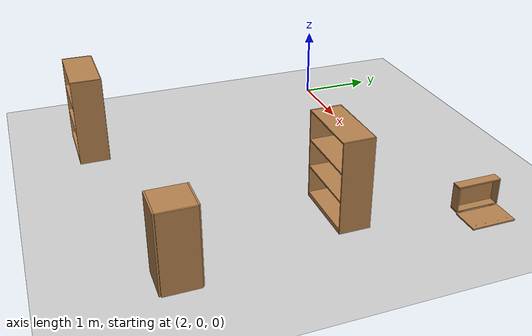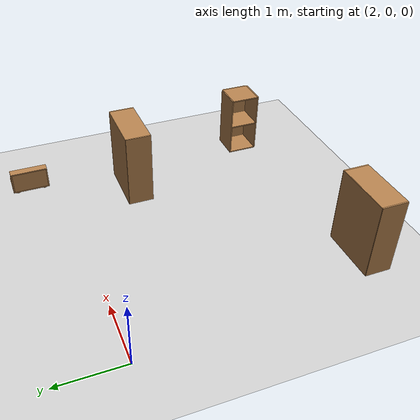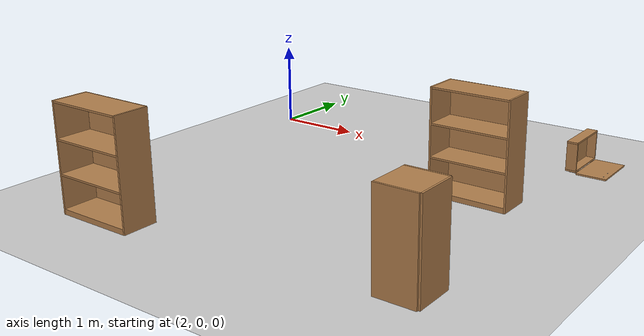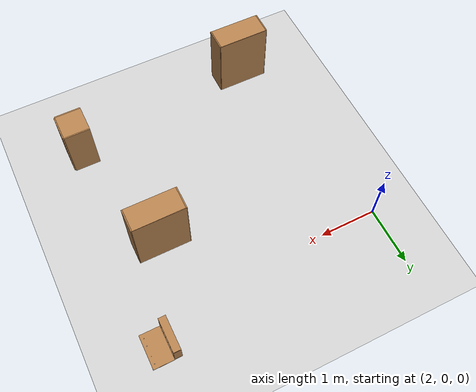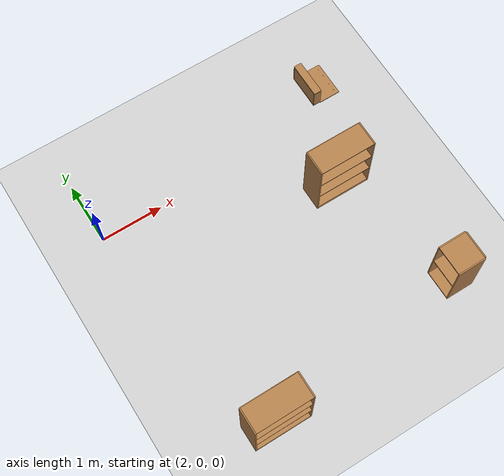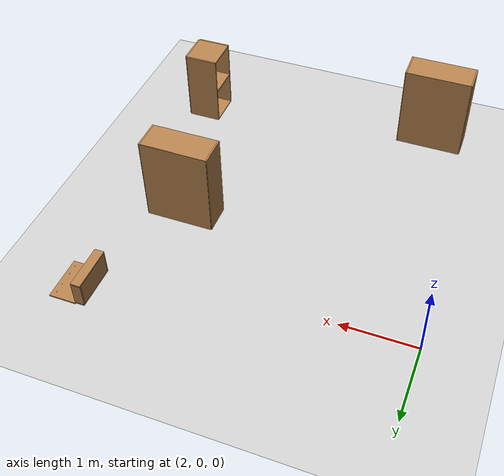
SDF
<sdf version="1.6">
 <world name="default">
  <model name="ground_plane">
   <static>1</static>
   <link name="link">
    <collision name="collision">
     <geometry><plane><normal>0 0 1</normal><size>100 100</size></plane></geometry>
     <surface><friction><ode><mu>100</mu><mu2>50</mu2></ode></friction></surface>
    </collision>
    <visual name="visual">
     <transparency>1</transparency>
     <cast_shadows>0</cast_shadows>
     <geometry><plane><normal>0 0 1</normal><size>100 100</size></plane></geometry>
     <material>
      <script><uri>file://media/materials/scripts/gazebo.material</uri><name>Gazebo/Grey</name></script>
     </material>
    </visual>
   </link>
  </model>
  <model name="cabinet">
   <static>1</static>
   <link name="cabinet_bottom_plate">
    <inertial>
     <pose>0 0 -1 0 -0 0</pose>
     <inertia><ixx>2.05</ixx><ixy>0</ixy><ixz>0</ixz><iyy>2.05</iyy><iyz>0</iyz><izz>2.05</izz></inertia>
     <mass>25</mass>
    </inertial>
    <collision name="cabinet_bottom_plate_geom">
     <pose>0 0 0.01 0 -0 0</pose>
     <geometry><box><size>0.45 0.45 0.02</size></box></geometry>
    </collision>
    <visual name="cabinet_bottom_plate_geom_visual">
     <pose>0 0 0.01 0 -0 0</pose>
     <geometry><box><size>0.45 0.45 0.02</size></box></geometry>
     <material>
      <script><uri>file://media/materials/scripts/gazebo.material</uri><name>Gazebo/Wood</name></script>
     </material>
    </visual>
    <collision name="cabinet_bottom_plate_geom_cabinet_back_plate">
     <pose>0.235 0 0.51 0 -0 0</pose>
     <geometry><box><size>0.02 0.45 1.02</size></box></geometry>
    </collision>
    <visual name="cabinet_bottom_plate_geom_cabinet_back_plate_visual">
     <pose>0.235 0 0.51 0 -0 0</pose>
     <geometry><box><size>0.02 0.45 1.02</size></box></geometry>
     <material>
      <script><uri>file://media/materials/scripts/gazebo.material</uri><name>Gazebo/Wood</name></script>
     </material>
    </visual>
    <collision name="cabinet_bottom_plate_geom_cabinet_left_plate">
     <pose>0 0.235 0.51 0 -0 0</pose>
     <geometry><box><size>0.45 0.02 1.02</size></box></geometry>
    </collision>
    <visual name="cabinet_bottom_plate_geom_cabinet_left_plate_visual">
     <pose>0 0.235 0.51 0 -0 0</pose>
     <geometry><box><size>0.45 0.02 1.02</size></box></geometry>
     <material>
      <script><uri>file://media/materials/scripts/gazebo.material</uri><name>Gazebo/Wood</name></script>
     </material>
    </visual>
    <collision name="cabinet_bottom_plate_geom_cabinet_middle_plate">
     <pose>0 0 0.51 0 -0 0</pose>
     <geometry><box><size>0.45 0.45 0.02</size></box></geometry>
    </collision>
    <visual name="cabinet_bottom_plate_geom_cabinet_middle_plate_visual">
     <pose>0 0 0.51 0 -0 0</pose>
     <geometry><box><size>0.45 0.45 0.02</size></box></geometry>
     <material>
      <script><uri>file://media/materials/scripts/gazebo.material</uri><name>Gazebo/Wood</name></script>
     </material>
    </visual>
    <collision name="cabinet_bottom_plate_geom_cabinet_right_plate">
     <pose>0 -0.235 0.51 0 -0 0</pose>
     <geometry><box><size>0.45 0.02 1.02</size></box></geometry>
    </collision>
    <visual name="cabinet_bottom_plate_geom_cabinet_right_plate_visual">
     <pose>0 -0.235 0.51 0 -0 0</pose>
     <geometry><box><size>0.45 0.02 1.02</size></box></geometry>
     <material>
      <script><uri>file://media/materials/scripts/gazebo.material</uri><name>Gazebo/Wood</name></script>
     </material>
    </visual>
    <collision name="cabinet_bottom_plate_geom_cabinet_top_plate">
     <pose>0 0 1.01 0 -0 0</pose>
     <geometry><box><size>0.45 0.45 0.02</size></box></geometry>
    </collision>
    <visual name="cabinet_bottom_plate_geom_cabinet_top_plate_visual">
     <pose>0 0 1.01 0 -0 0</pose>
     <geometry><box><size>0.45 0.45 0.02</size></box></geometry>
     <material>
      <script><uri>file://media/materials/scripts/gazebo.material</uri><name>Gazebo/Wood</name></script>
     </material>
    </visual>
   </link>
   <pose>6.02694 -3.24856 0 0 -0 0</pose>
  </model>
  <model name="bookshelf">
   <static>1</static>
   <link name="link">
    <inertial><mass>1</mass></inertial>
    <collision name="back">
     <pose>0 0.005 0.6 0 -0 0</pose>
     <geometry><box><size>0.9 0.01 1.2</size></box></geometry>
    </collision>
    <visual name="visual1">
     <pose>0 0.005 0.6 0 -0 0</pose>
     <geometry><box><size>0.9 0.01 1.2</size></box></geometry>
     <material>
      <script><uri>file://media/materials/scripts/gazebo.material</uri><name>Gazebo/Wood</name></script>
     </material>
    </visual>
    <collision name="left_side">
     <pose>0.45 -0.195 0.6 0 -0 0</pose>
     <geometry><box><size>0.02 0.4 1.2</size></box></geometry>
    </collision>
    <visual name="visual2">
     <pose>0.45 -0.195 0.6 0 -0 0</pose>
     <geometry><box><size>0.02 0.4 1.2</size></box></geometry>
     <material>
      <script><uri>file://media/materials/scripts/gazebo.material</uri><name>Gazebo/Wood</name></script>
     </material>
    </visual>
    <collision name="right_side">
     <pose>-0.45 -0.195 0.6 0 -0 0</pose>
     <geometry><box><size>0.02 0.4 1.2</size></box></geometry>
    </collision>
    <visual name="visual3">
     <pose>-0.45 -0.195 0.6 0 -0 0</pose>
     <geometry><box><size>0.02 0.4 1.2</size></box></geometry>
     <material>
      <script><uri>file://media/materials/scripts/gazebo.material</uri><name>Gazebo/Wood</name></script>
     </material>
    </visual>
    <collision name="bottom">
     <pose>0 -0.195 0.03 0 -0 0</pose>
     <geometry><box><size>0.88 0.4 0.06</size></box></geometry>
    </collision>
    <visual name="visual4">
     <pose>0 -0.195 0.03 0 -0 0</pose>
     <geometry><box><size>0.88 0.4 0.06</size></box></geometry>
     <material>
      <script><uri>file://media/materials/scripts/gazebo.material</uri><name>Gazebo/Wood</name></script>
     </material>
    </visual>
    <collision name="top">
     <pose>0 -0.195 1.19 0 -0 0</pose>
     <geometry><box><size>0.88 0.4 0.02</size></box></geometry>
    </collision>
    <visual name="visual5">
     <pose>0 -0.195 1.19 0 -0 0</pose>
     <geometry><box><size>0.88 0.4 0.02</size></box></geometry>
     <material>
      <script><uri>file://media/materials/scripts/gazebo.material</uri><name>Gazebo/Wood</name></script>
     </material>
    </visual>
    <collision name="low_shelf">
     <pose>0 -0.195 0.43 0 -0 0</pose>
     <geometry><box><size>0.88 0.4 0.02</size></box></geometry>
    </collision>
    <visual name="visual6">
     <pose>0 -0.195 0.43 0 -0 0</pose>
     <geometry><box><size>0.88 0.4 0.02</size></box></geometry>
     <material>
      <script><uri>file://media/materials/scripts/gazebo.material</uri><name>Gazebo/Wood</name></script>
     </material>
    </visual>
    <collision name="high_shelf">
     <pose>0 -0.195 0.8 0 -0 0</pose>
     <geometry><box><size>0.88 0.4 0.02</size></box></geometry>
    </collision>
    <visual name="visual7">
     <pose>0 -0.195 0.8 0 -0 0</pose>
     <geometry><box><size>0.88 0.4 0.02</size></box></geometry>
     <material>
      <script><uri>file://media/materials/scripts/gazebo.material</uri><name>Gazebo/Wood</name></script>
     </material>
    </visual>
   </link>
   <pose>5.44874 -0.888816 0 0 -0 0</pose>
  </model>
  <model name="bookshelf_1">
   <static>1</static>
   <link name="link">
    <inertial><mass>1</mass></inertial>
    <collision name="back">
     <pose>0 0.005 0.6 0 -0 0</pose>
     <geometry><box><size>0.9 0.01 1.2</size></box></geometry>
    </collision>
    <visual name="visual1">
     <pose>0 0.005 0.6 0 -0 0</pose>
     <geometry><box><size>0.9 0.01 1.2</size></box></geometry>
     <material>
      <script><uri>file://media/materials/scripts/gazebo.material</uri><name>Gazebo/Wood</name></script>
     </material>
    </visual>
    <collision name="left_side">
     <pose>0.45 -0.195 0.6 0 -0 0</pose>
     <geometry><box><size>0.02 0.4 1.2</size></box></geometry>
    </collision>
    <visual name="visual2">
     <pose>0.45 -0.195 0.6 0 -0 0</pose>
     <geometry><box><size>0.02 0.4 1.2</size></box></geometry>
     <material>
      <script><uri>file://media/materials/scripts/gazebo.material</uri><name>Gazebo/Wood</name></script>
     </material>
    </visual>
    <collision name="right_side">
     <pose>-0.45 -0.195 0.6 0 -0 0</pose>
     <geometry><box><size>0.02 0.4 1.2</size></box></geometry>
    </collision>
    <visual name="visual3">
     <pose>-0.45 -0.195 0.6 0 -0 0</pose>
     <geometry><box><size>0.02 0.4 1.2</size></box></geometry>
     <material>
      <script><uri>file://media/materials/scripts/gazebo.material</uri><name>Gazebo/Wood</name></script>
     </material>
    </visual>
    <collision name="bottom">
     <pose>0 -0.195 0.03 0 -0 0</pose>
     <geometry><box><size>0.88 0.4 0.06</size></box></geometry>
    </collision>
    <visual name="visual4">
     <pose>0 -0.195 0.03 0 -0 0</pose>
     <geometry><box><size>0.88 0.4 0.06</size></box></geometry>
     <material>
      <script><uri>file://media/materials/scripts/gazebo.material</uri><name>Gazebo/Wood</name></script>
     </material>
    </visual>
    <collision name="top">
     <pose>0 -0.195 1.19 0 -0 0</pose>
     <geometry><box><size>0.88 0.4 0.02</size></box></geometry>
    </collision>
    <visual name="visual5">
     <pose>0 -0.195 1.19 0 -0 0</pose>
     <geometry><box><size>0.88 0.4 0.02</size></box></geometry>
     <material>
      <script><uri>file://media/materials/scripts/gazebo.material</uri><name>Gazebo/Wood</name></script>
     </material>
    </visual>
    <collision name="low_shelf">
     <pose>0 -0.195 0.43 0 -0 0</pose>
     <geometry><box><size>0.88 0.4 0.02</size></box></geometry>
    </collision>
    <visual name="visual6">
     <pose>0 -0.195 0.43 0 -0 0</pose>
     <geometry><box><size>0.88 0.4 0.02</size></box></geometry>
     <material>
      <script><uri>file://media/materials/scripts/gazebo.material</uri><name>Gazebo/Wood</name></script>
     </material>
    </visual>
    <collision name="high_shelf">
     <pose>0 -0.195 0.8 0 -0 0</pose>
     <geometry><box><size>0.88 0.4 0.02</size></box></geometry>
    </collision>
    <visual name="visual7">
     <pose>0 -0.195 0.8 0 -0 0</pose>
     <geometry><box><size>0.88 0.4 0.02</size></box></geometry>
     <material>
      <script><uri>file://media/materials/scripts/gazebo.material</uri><name>Gazebo/Wood</name></script>
     </material>
    </visual>
   </link>
   <pose>2.72576 -3.48764 0 0 -0 0</pose>
  </model>
  <model name="wooden_case">
   <link name="base">
    <pose>0 0 0.024 0 -0 0</pose>
    <inertial>
     <pose>-0.022184 0 0.171592 0 -0 0</pose>
     <mass>3.96264</mass>
     <inertia>
      <ixx>0.213536</ixx>
      <ixy>0</ixy>
      <ixz>0.000779377</ixz>
      <iyy>0.0708943</iyy>
      <iyz>0</iyz>
      <izz>0.154604</izz>
     </inertia>
    </inertial>
    <collision name="collision_back">
     <pose>-0.053975 0 0.1778 0 -0 0</pose>
     <geometry><box><size>0.01905 0.5461 0.3175</size></box></geometry>
     <surface>
      <contact>
       <poissons_ratio>0.347</poissons_ratio>
       <elastic_modulus>8.8e+09</elastic_modulus>
       <ode><kp>100000</kp><kd>100</kd><max_vel>100</max_vel><min_depth>0.001</min_depth></ode>
      </contact>
      <friction>
       <torsional>
        <coefficient>1</coefficient>
        <use_patch_radius>0</use_patch_radius>
        <surface_radius>0.01</surface_radius>
       </torsional>
      </friction>
     </surface>
    </collision>
    <visual name="visual_back">
     <pose>-0.053975 0 0.1778 0 -0 0</pose>
     <geometry><box><size>0.01905 0.5461 0.3175</size></box></geometry>
     <material>
      <script><uri>file://media/materials/scripts/gazebo.material</uri><name>Gazebo/Wood</name></script>
     </material>
    </visual>
    <collision name="collision_bottom">
     <pose>0 0 0.009525 0 -0 0</pose>
     <geometry><box><size>0.127 0.5842 0.01905</size></box></geometry>
     <surface>
      <contact>
       <poissons_ratio>0.347</poissons_ratio>
       <elastic_modulus>8.8e+09</elastic_modulus>
       <ode><kp>100000</kp><kd>100</kd><max_vel>100</max_vel><min_depth>0.001</min_depth></ode>
      </contact>
      <friction>
       <torsional>
        <coefficient>1</coefficient>
        <use_patch_radius>0</use_patch_radius>
        <surface_radius>0.01</surface_radius>
       </torsional>
      </friction>
     </surface>
    </collision>
    <visual name="visual_bottom">
     <pose>0 0 0.009525 0 -0 0</pose>
     <geometry><box><size>0.127 0.5842 0.01905</size></box></geometry>
     <material>
      <script><uri>file://media/materials/scripts/gazebo.material</uri><name>Gazebo/Wood</name></script>
     </material>
    </visual>
    <collision name="collision_top">
     <pose>0 0 0.346075 0 -0 0</pose>
     <geometry><box><size>0.127 0.5842 0.01905</size></box></geometry>
     <surface>
      <contact>
       <poissons_ratio>0.347</poissons_ratio>
       <elastic_modulus>8.8e+09</elastic_modulus>
       <ode><kp>100000</kp><kd>100</kd><max_vel>100</max_vel><min_depth>0.001</min_depth></ode>
      </contact>
      <friction>
       <torsional>
        <coefficient>1</coefficient>
        <use_patch_radius>0</use_patch_radius>
        <surface_radius>0.01</surface_radius>
       </torsional>
      </friction>
     </surface>
    </collision>
    <visual name="visual_top">
     <pose>0 0 0.346075 0 -0 0</pose>
     <geometry><box><size>0.127 0.5842 0.01905</size></box></geometry>
     <material>
      <script><uri>file://media/materials/scripts/gazebo.material</uri><name>Gazebo/Wood</name></script>
     </material>
    </visual>
    <collision name="collision_left">
     <pose>0 -0.282575 0.1778 0 -0 0</pose>
     <geometry><box><size>0.127 0.01905 0.3175</size></box></geometry>
     <surface>
      <contact>
       <poissons_ratio>0.347</poissons_ratio>
       <elastic_modulus>8.8e+09</elastic_modulus>
       <ode><kp>100000</kp><kd>100</kd><max_vel>100</max_vel><min_depth>0.001</min_depth></ode>
      </contact>
      <friction>
       <torsional>
        <coefficient>1</coefficient>
        <use_patch_radius>0</use_patch_radius>
        <surface_radius>0.01</surface_radius>
       </torsional>
      </friction>
     </surface>
    </collision>
    <visual name="visual_left">
     <pose>0 -0.282575 0.1778 0 -0 0</pose>
     <geometry><box><size>0.127 0.01905 0.3175</size></box></geometry>
     <material>
      <script><uri>file://media/materials/scripts/gazebo.material</uri><name>Gazebo/Wood</name></script>
     </material>
    </visual>
    <collision name="collision_right">
     <pose>0 0.282575 0.1778 0 -0 0</pose>
     <geometry><box><size>0.127 0.01905 0.3175</size></box></geometry>
     <surface>
      <contact>
       <poissons_ratio>0.347</poissons_ratio>
       <elastic_modulus>8.8e+09</elastic_modulus>
       <ode><kp>100000</kp><kd>100</kd><max_vel>100</max_vel><min_depth>0.001</min_depth></ode>
      </contact>
      <friction>
       <torsional>
        <coefficient>1</coefficient>
        <use_patch_radius>0</use_patch_radius>
        <surface_radius>0.01</surface_radius>
       </torsional>
      </friction>
     </surface>
    </collision>
    <visual name="visual_right">
     <pose>0 0.282575 0.1778 0 -0 0</pose>
     <geometry><box><size>0.127 0.01905 0.3175</size></box></geometry>
     <material>
      <script><uri>file://media/materials/scripts/gazebo.material</uri><name>Gazebo/Wood</name></script>
     </material>
    </visual>
    <collision name="collision_block_left">
     <pose>0.0095 -0.2151 -0.012 0 -0 0</pose>
     <geometry><box><size>0.108 0.05 0.024</size></box></geometry>
     <surface>
      <contact>
       <poissons_ratio>0.347</poissons_ratio>
       <elastic_modulus>8.8e+09</elastic_modulus>
       <ode><kp>100000</kp><kd>100</kd><max_vel>100</max_vel><min_depth>0.001</min_depth></ode>
      </contact>
      <friction>
       <torsional>
        <coefficient>1</coefficient>
        <use_patch_radius>0</use_patch_radius>
        <surface_radius>0.01</surface_radius>
       </torsional>
      </friction>
     </surface>
    </collision>
    <visual name="visual_block_left">
     <pose>0.0095 -0.2151 -0.012 0 -0 0</pose>
     <geometry><box><size>0.108 0.05 0.024</size></box></geometry>
     <material>
      <script><uri>file://media/materials/scripts/gazebo.material</uri><name>Gazebo/Wood</name></script>
     </material>
    </visual>
    <collision name="collision_block_right">
     <pose>0.0095 0.2151 -0.012 0 -0 0</pose>
     <geometry><box><size>0.108 0.05 0.024</size></box></geometry>
     <surface>
      <contact>
       <poissons_ratio>0.347</poissons_ratio>
       <elastic_modulus>8.8e+09</elastic_modulus>
       <ode><kp>100000</kp><kd>100</kd><max_vel>100</max_vel><min_depth>0.001</min_depth></ode>
      </contact>
      <friction>
       <torsional>
        <coefficient>1</coefficient>
        <use_patch_radius>0</use_patch_radius>
        <surface_radius>0.01</surface_radius>
       </torsional>
      </friction>
     </surface>
    </collision>
    <visual name="visual_block_right">
     <pose>0.0095 0.2151 -0.012 0 -0 0</pose>
     <geometry><box><size>0.108 0.05 0.024</size></box></geometry>
     <material>
      <script><uri>file://media/materials/scripts/gazebo.material</uri><name>Gazebo/Wood</name></script>
     </material>
    </visual>
   </link>
   <link name="lid">
    <pose>0.243775 0 0.009525 0 -0 0</pose>
    <inertial>
     <mass>1.97874</mass>
     <inertia>
      <ixx>0.0563367</ixx>
      <ixy>0</ixy>
      <ixz>0</ixz>
      <iyy>0.020911</iyy>
      <iyz>0</iyz>
      <izz>0.0771281</izz>
     </inertia>
    </inertial>
    <collision name="collision">
     <geometry><box><size>0.3556 0.5842 0.01905</size></box></geometry>
     <surface>
      <contact>
       <poissons_ratio>0.347</poissons_ratio>
       <elastic_modulus>8.8e+09</elastic_modulus>
       <ode><kp>100000</kp><kd>100</kd><max_vel>100</max_vel><min_depth>0.001</min_depth></ode>
      </contact>
      <friction>
       <torsional>
        <coefficient>1</coefficient>
        <use_patch_radius>0</use_patch_radius>
        <surface_radius>0.01</surface_radius>
       </torsional>
      </friction>
     </surface>
    </collision>
    <visual name="visual">
     <geometry><box><size>0.3556 0.5842 0.01905</size></box></geometry>
     <material>
      <script><uri>file://media/materials/scripts/gazebo.material</uri><name>Gazebo/Wood</name></script>
     </material>
    </visual>
    <visual name="tee_nut_1">
     <pose>0.122 -0.216 0 0 -0 0</pose>
     <geometry><cylinder><radius>0.00635</radius><length>0.0192405</length></cylinder></geometry>
     <material>
      <script><uri>file://media/materials/scripts/gazebo.material</uri><name>Gazebo/Grey</name></script>
     </material>
    </visual>
    <visual name="tee_nut_2">
     <pose>0.122 -0.088 0 0 -0 0</pose>
     <geometry><cylinder><radius>0.00635</radius><length>0.0192405</length></cylinder></geometry>
     <material>
      <script><uri>file://media/materials/scripts/gazebo.material</uri><name>Gazebo/Grey</name></script>
     </material>
    </visual>
    <visual name="tee_nut_3">
     <pose>0.122 0.088 0 0 -0 0</pose>
     <geometry><cylinder><radius>0.00635</radius><length>0.0192405</length></cylinder></geometry>
     <material>
      <script><uri>file://media/materials/scripts/gazebo.material</uri><name>Gazebo/Grey</name></script>
     </material>
    </visual>
    <visual name="tee_nut_4">
     <pose>0.122 0.216 0 0 -0 0</pose>
     <geometry><cylinder><radius>0.00635</radius><length>0.0192405</length></cylinder></geometry>
     <material>
      <script><uri>file://media/materials/scripts/gazebo.material</uri><name>Gazebo/Grey</name></script>
     </material>
    </visual>
   </link>
   <joint name="lid_hinge" type="revolute">
    <pose>-0.1778 0 0.01905 0 -0 0</pose>
    <parent>base</parent>
    <child>lid</child>
    <axis>
     <xyz>0 1 0</xyz>
     <limit><upper>0.523599</upper><lower>-1.5708</lower></limit>
     <use_parent_model_frame>0</use_parent_model_frame>
     <dynamics><spring_reference>0</spring_reference><spring_stiffness>0</spring_stiffness></dynamics>
    </axis>
   </joint>
   <pose>5.96895 0.517218 -0.001057 -0 -0.000427 -1e-06</pose>
  </model>
 </world>
</sdf>
